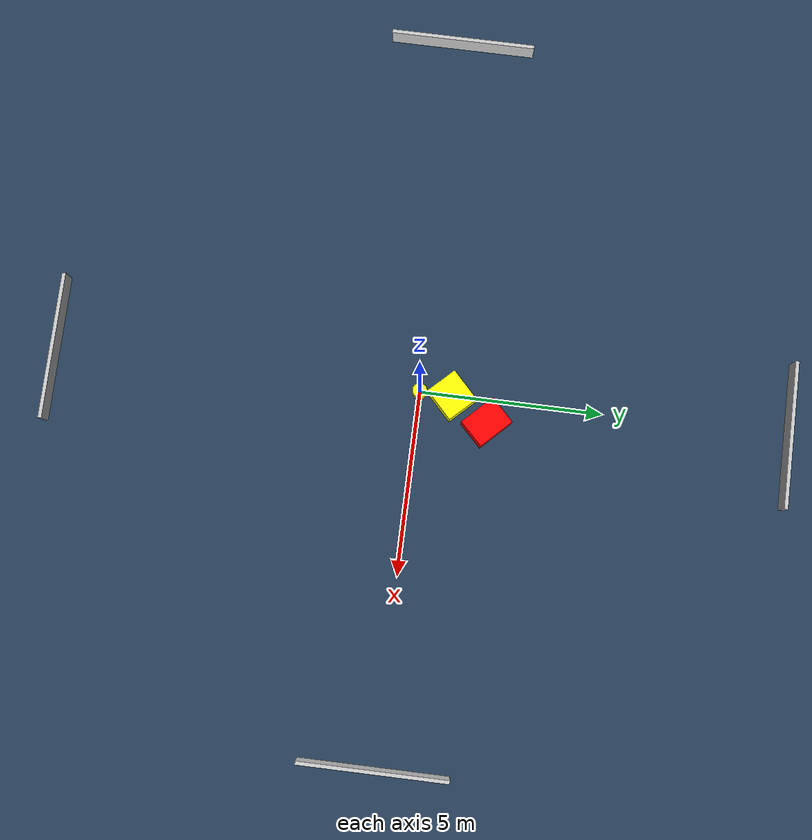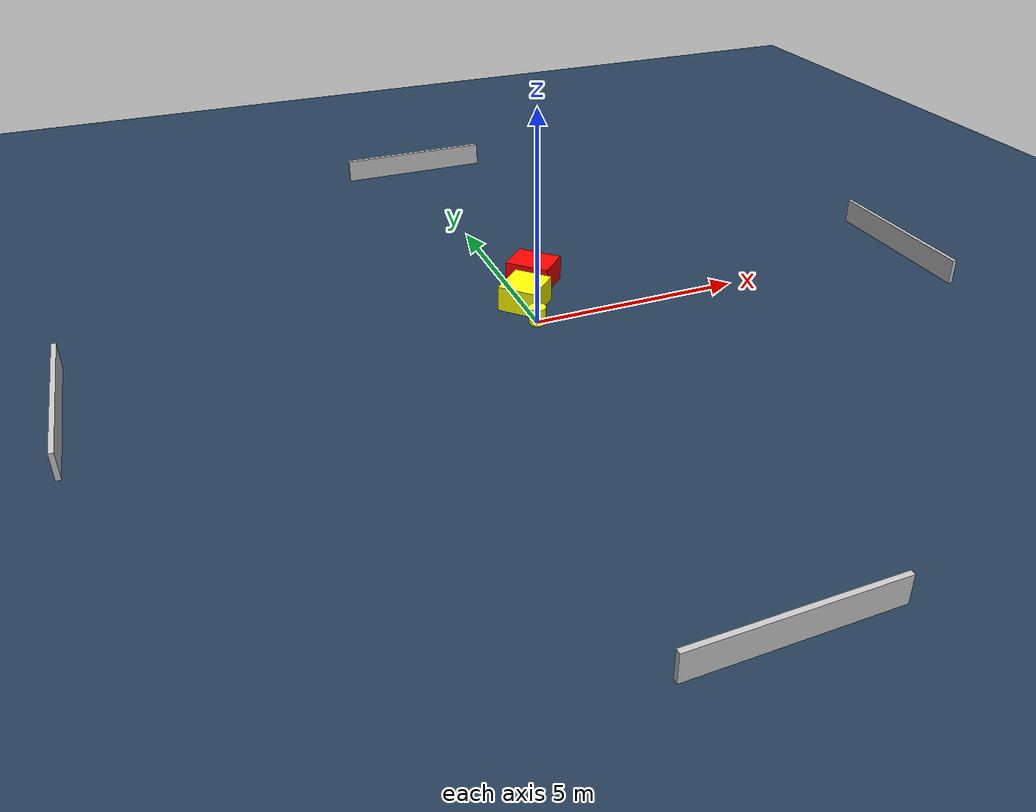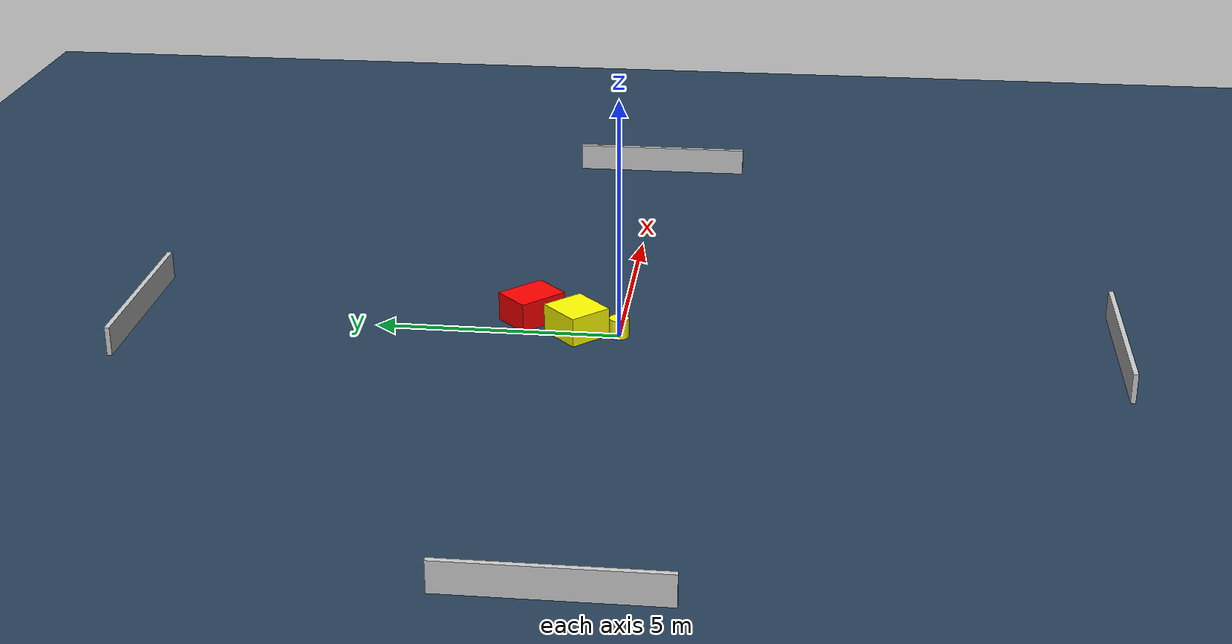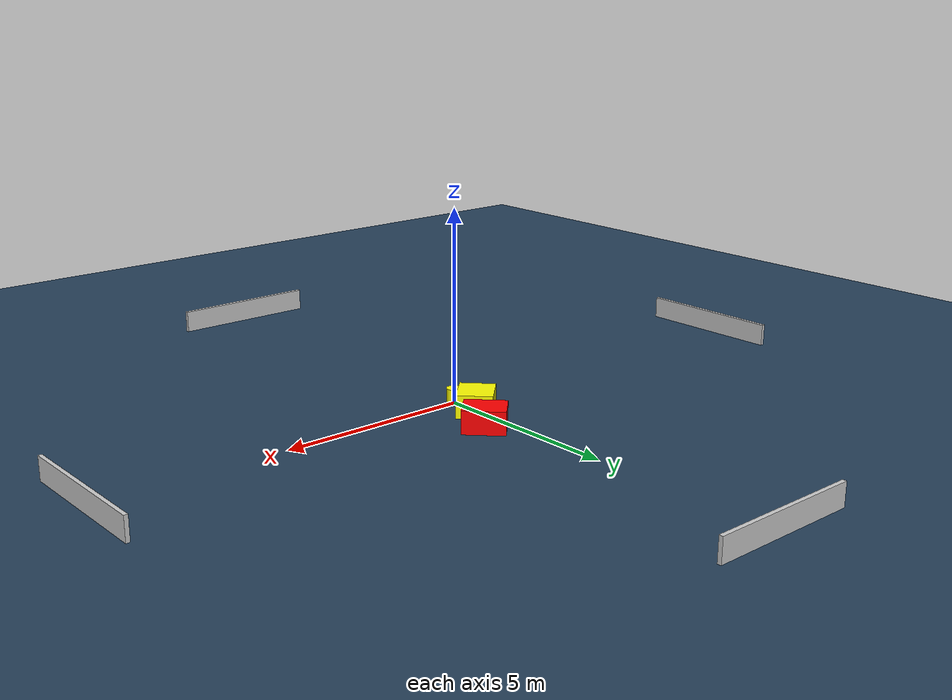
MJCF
<?xml version="1.0" ?>
<mujoco model="generated_environment">
  <option timestep="0.01" integrator="RK4" cone="elliptic"/>
  <default>
    <geom density="1"/>
  </default>
  <asset>
    <texture builtin="gradient" height="3072" name="skybox" rgb1="0.3 0.5 0.7" rgb2="0 0 0" type="skybox" width="512"/>
    <texture builtin="checker" height="300" name="groundplane" rgb1="0.2 0.3 0.4" rgb2="0.1 0.2 0.3" type="2d" width="300"/>
    <material name="groundplane" reflectance="0.2" texrepeat="5 5" texture="groundplane"/>
  </asset>
  <worldbody>
    <light dir="0 0 -1" directional="true" pos="0 0 1.5"/>
    <geom condim="3" friction="0.5 0.005 0.001" material="groundplane" name="floor" pos="0 0 0" size="0 0 0.05" type="plane"/>
    <body name="walls">
      <geom name="wall_1" condim="4" pos="-10.0 0.0 0.3" rgba="0.800000011920929 0.800000011920929 0.800000011920929 1.0" size="0.05 2.0 0.3" type="box"/>
      <geom name="wall_2" condim="4" pos="10.0 0.0 0.3" rgba="0.800000011920929 0.800000011920929 0.800000011920929 1.0" size="0.05 2.0 0.3" type="box"/>
      <geom name="wall_3" condim="4" pos="0.0 -10.0 0.3" rgba="0.800000011920929 0.800000011920929 0.800000011920929 1.0" size="2.0 0.05 0.3" type="box"/>
      <geom name="wall_4" condim="4" pos="0.0 10.0 0.3" rgba="0.800000011920929 0.800000011920929 0.800000011920929 1.0" size="2.0 0.05 0.3" type="box"/>
    </body>
    <body name="robot">
      <joint name="joint_x" type="slide" pos="0 0 0" axis="1 0 0"/>
      <joint name="joint_y" type="slide" pos="0 0 0" axis="0 1 0"/>
      <geom name="robot" type="cylinder" pos="0.0 0.0 0.2" size="0.2 0.2 0.0" mass="5.0" friction="1.0 0.005 0.0001" condim="4" rgba="1.0 1.0 0.0 1.0"/>
    </body>
    <body name="obstacle_1_movable">
      <geom name="obstacle_1_movable" condim="4" pos="0.04118713294130941 0.877219165531148 0.3" euler="0 0 313.74153061782846" friction="0.0 0.005 0.001" rgba="1.0 1.0 0.0 1.0" size="0.4577660256678568 0.49124367982596184 0.3" type="box" mass="0.1"/>
      <joint type="free"/>
    </body>
    <body name="obstacle_2_static">
      <geom name="obstacle_2_static" condim="4" pos="0.6490155296675658 1.8833679108774877 0.3" euler="0 0 314.6249221198352" friction="0.0 0.005 0.001" rgba="1.0 0.0 0.0 1.0" size="0.5381055093763668 0.41910874877628435 0.3" type="box"/>
    </body>
  </worldbody>
  <actuator>
    <motor name="actuator_x" joint="joint_x" gear="1" ctrlrange="-1 1"/>
    <motor name="actuator_y" joint="joint_y" gear="1" ctrlrange="-1 1"/>
  </actuator>
</mujoco>
